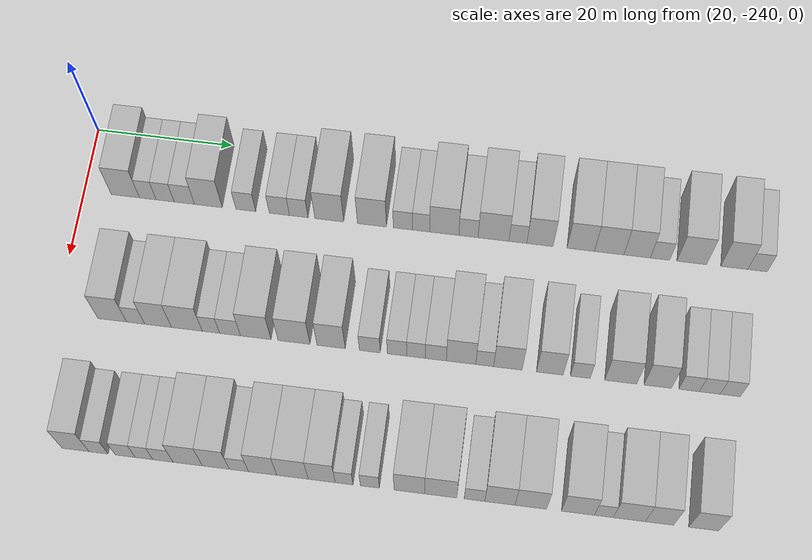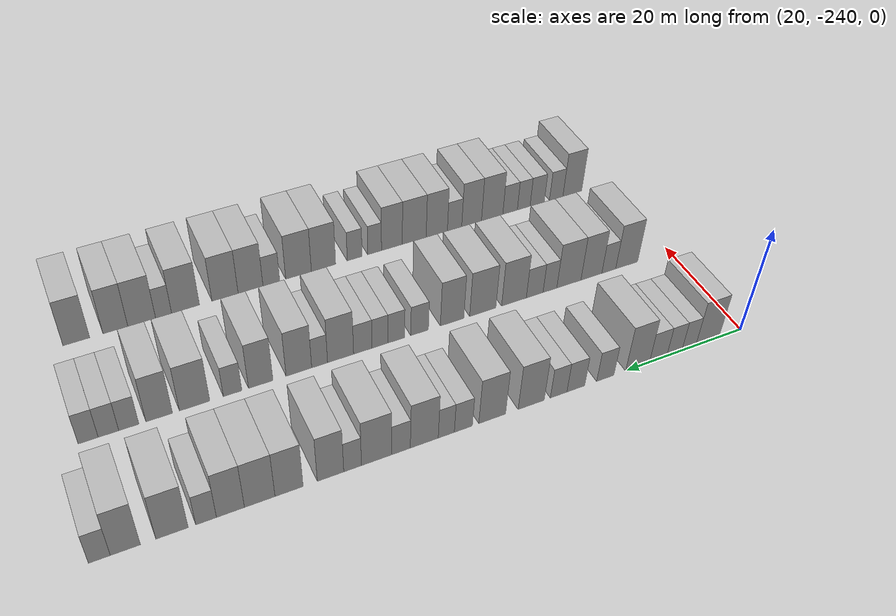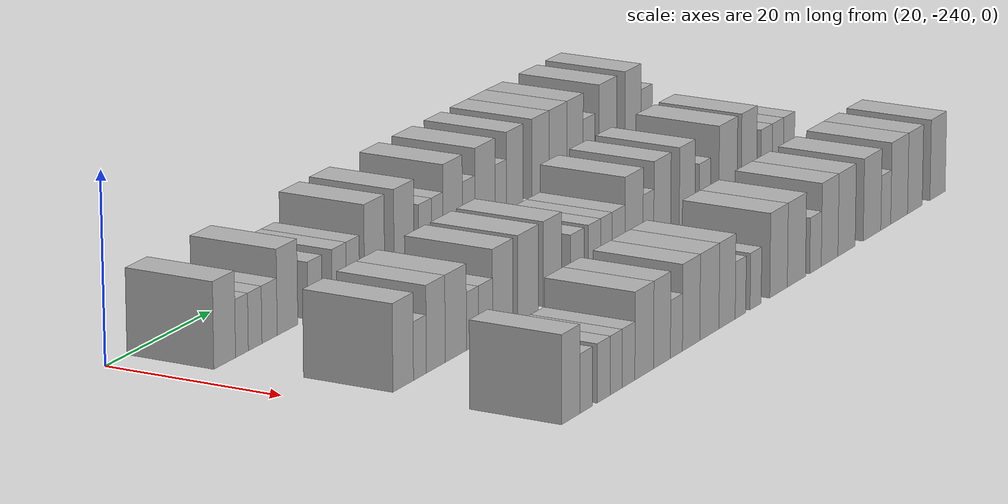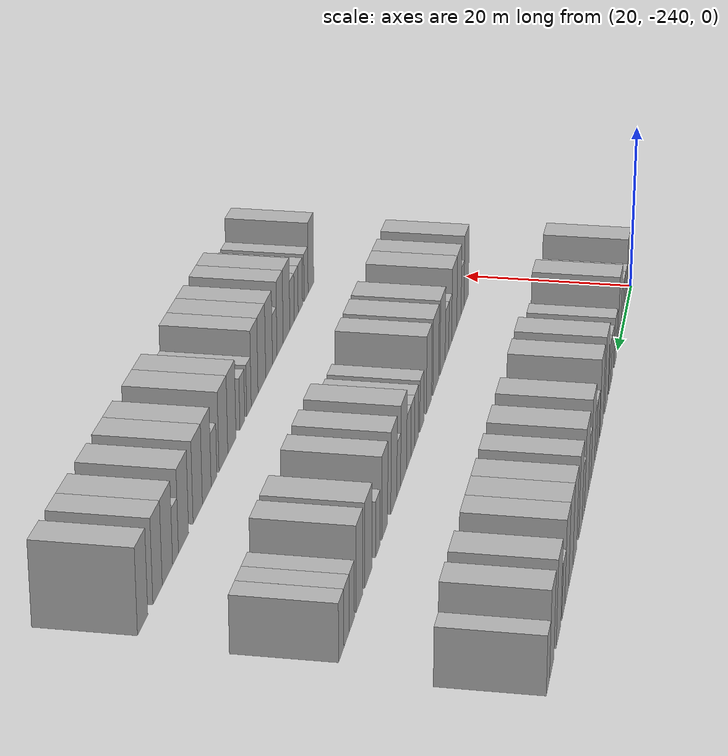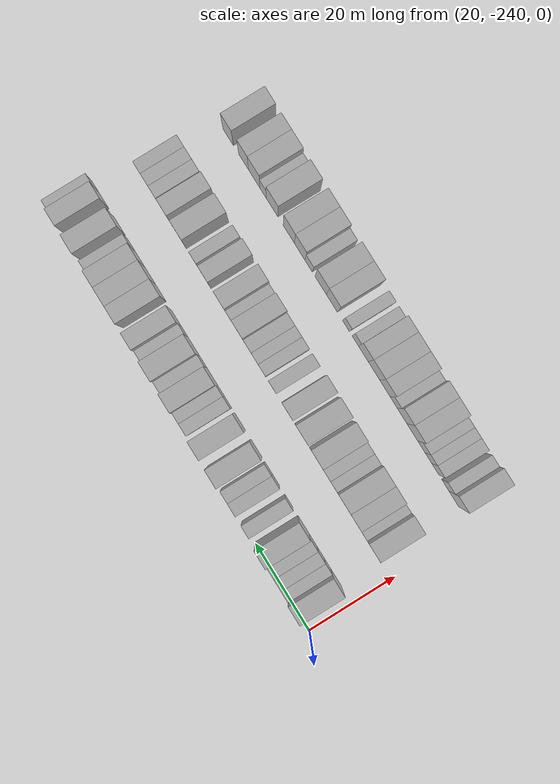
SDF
<sdf version="1.6">
 <world name="default">
  <model name="building_1">
   <static>1</static>
   <pose>25.0000 -233.9267 0 0.000000 0.000000 0.000000</pose>
   <link name="link">
    <pose>0 0 4.50 0 0 0</pose>
    <collision name="collision"><geometry><box><size>10.0000 4.1465 9.0000</size></box></geometry></collision>
    <visual name="visual">
     <cast_shadows>0</cast_shadows>
     <geometry><box><size>10.0000 4.1465 9.0000</size></box></geometry>
     <material>
      <script>
       <uri>model://HANNAS_wall/materials/scripts</uri>
       <uri>model://HANNAS_wall/materials/textures</uri>
       <name>vrc/HANNAS_wall</name>
      </script>
     </material>
    </visual>
   </link>
  </model>
  <model name="building_2">
   <static>1</static>
   <pose>25.0000 -230.6240 0 0.000000 0.000000 0.000000</pose>
   <link name="link">
    <pose>0 0 3.00 0 0 0</pose>
    <collision name="collision"><geometry><box><size>10.0000 2.4588 6.0000</size></box></geometry></collision>
    <visual name="visual">
     <cast_shadows>0</cast_shadows>
     <geometry><box><size>10.0000 2.4588 6.0000</size></box></geometry>
     <material>
      <script>
       <uri>model://HANNAS_wall/materials/scripts</uri>
       <uri>model://HANNAS_wall/materials/textures</uri>
       <name>vrc/HANNAS_wall</name>
      </script>
     </material>
    </visual>
   </link>
  </model>
  <model name="building_3">
   <static>1</static>
   <pose>25.0000 -228.0705 0 0.000000 0.000000 0.000000</pose>
   <link name="link">
    <pose>0 0 3.00 0 0 0</pose>
    <collision name="collision"><geometry><box><size>10.0000 2.6482 6.0000</size></box></geometry></collision>
    <visual name="visual">
     <cast_shadows>0</cast_shadows>
     <geometry><box><size>10.0000 2.6482 6.0000</size></box></geometry>
     <material>
      <script>
       <uri>model://HANNAS_wall/materials/scripts</uri>
       <uri>model://HANNAS_wall/materials/textures</uri>
       <name>vrc/HANNAS_wall</name>
      </script>
     </material>
    </visual>
   </link>
  </model>
  <model name="building_4">
   <static>1</static>
   <pose>25.0000 -225.2496 0 0.000000 0.000000 0.000000</pose>
   <link name="link">
    <pose>0 0 3.00 0 0 0</pose>
    <collision name="collision"><geometry><box><size>10.0000 2.9935 6.0000</size></box></geometry></collision>
    <visual name="visual">
     <cast_shadows>0</cast_shadows>
     <geometry><box><size>10.0000 2.9935 6.0000</size></box></geometry>
     <material>
      <script>
       <uri>model://HANNAS_wall/materials/scripts</uri>
       <uri>model://HANNAS_wall/materials/textures</uri>
       <name>vrc/HANNAS_wall</name>
      </script>
     </material>
    </visual>
   </link>
  </model>
  <model name="building_5">
   <static>1</static>
   <pose>25.0000 -221.7155 0 0.000000 0.000000 0.000000</pose>
   <link name="link">
    <pose>0 0 4.50 0 0 0</pose>
    <collision name="collision"><geometry><box><size>10.0000 4.0747 9.0000</size></box></geometry></collision>
    <visual name="visual">
     <cast_shadows>0</cast_shadows>
     <geometry><box><size>10.0000 4.0747 9.0000</size></box></geometry>
     <material>
      <script>
       <uri>model://HANNAS_wall/materials/scripts</uri>
       <uri>model://HANNAS_wall/materials/textures</uri>
       <name>vrc/HANNAS_wall</name>
      </script>
     </material>
    </visual>
   </link>
  </model>
  <model name="building_6">
   <static>1</static>
   <pose>25.0000 -216.2346 0 0.000000 0.000000 0.000000</pose>
   <link name="link">
    <pose>0 0 3.00 0 0 0</pose>
    <collision name="collision"><geometry><box><size>10.0000 2.8871 6.0000</size></box></geometry></collision>
    <visual name="visual">
     <cast_shadows>0</cast_shadows>
     <geometry><box><size>10.0000 2.8871 6.0000</size></box></geometry>
     <material>
      <script>
       <uri>model://HANNAS_wall/materials/scripts</uri>
       <uri>model://HANNAS_wall/materials/textures</uri>
       <name>vrc/HANNAS_wall</name>
      </script>
     </material>
    </visual>
   </link>
  </model>
  <model name="building_7">
   <static>1</static>
   <pose>25.0000 -211.3255 0 0.000000 0.000000 0.000000</pose>
   <link name="link">
    <pose>0 0 3.00 0 0 0</pose>
    <collision name="collision"><geometry><box><size>10.0000 2.9312 6.0000</size></box></geometry></collision>
    <visual name="visual">
     <cast_shadows>0</cast_shadows>
     <geometry><box><size>10.0000 2.9312 6.0000</size></box></geometry>
     <material>
      <script>
       <uri>model://HANNAS_wall/materials/scripts</uri>
       <uri>model://HANNAS_wall/materials/textures</uri>
       <name>vrc/HANNAS_wall</name>
      </script>
     </material>
    </visual>
   </link>
  </model>
  <model name="building_8">
   <static>1</static>
   <pose>25.0000 -208.5059 0 0.000000 0.000000 0.000000</pose>
   <link name="link">
    <pose>0 0 3.00 0 0 0</pose>
    <collision name="collision"><geometry><box><size>10.0000 2.7079 6.0000</size></box></geometry></collision>
    <visual name="visual">
     <cast_shadows>0</cast_shadows>
     <geometry><box><size>10.0000 2.7079 6.0000</size></box></geometry>
     <material>
      <script>
       <uri>model://HANNAS_wall/materials/scripts</uri>
       <uri>model://HANNAS_wall/materials/textures</uri>
       <name>vrc/HANNAS_wall</name>
      </script>
     </material>
    </visual>
   </link>
  </model>
  <model name="building_9">
   <static>1</static>
   <pose>25.0000 -204.0566 0 0.000000 0.000000 0.000000</pose>
   <link name="link">
    <pose>0 0 4.50 0 0 0</pose>
    <collision name="collision"><geometry><box><size>10.0000 4.1907 9.0000</size></box></geometry></collision>
    <visual name="visual">
     <cast_shadows>0</cast_shadows>
     <geometry><box><size>10.0000 4.1907 9.0000</size></box></geometry>
     <material>
      <script>
       <uri>model://HANNAS_wall/materials/scripts</uri>
       <uri>model://HANNAS_wall/materials/textures</uri>
       <name>vrc/HANNAS_wall</name>
      </script>
     </material>
    </visual>
   </link>
  </model>
  <model name="building_10">
   <static>1</static>
   <pose>25.0000 -197.8575 0 0.000000 0.000000 0.000000</pose>
   <link name="link">
    <pose>0 0 4.50 0 0 0</pose>
    <collision name="collision"><geometry><box><size>10.0000 4.2074 9.0000</size></box></geometry></collision>
    <visual name="visual">
     <cast_shadows>0</cast_shadows>
     <geometry><box><size>10.0000 4.2074 9.0000</size></box></geometry>
     <material>
      <script>
       <uri>model://HANNAS_wall/materials/scripts</uri>
       <uri>model://HANNAS_wall/materials/textures</uri>
       <name>vrc/HANNAS_wall</name>
      </script>
     </material>
    </visual>
   </link>
  </model>
  <model name="building_11">
   <static>1</static>
   <pose>25.0000 -193.3624 0 0.000000 0.000000 0.000000</pose>
   <link name="link">
    <pose>0 0 3.00 0 0 0</pose>
    <collision name="collision"><geometry><box><size>10.0000 2.7829 6.0000</size></box></geometry></collision>
    <visual name="visual">
     <cast_shadows>0</cast_shadows>
     <geometry><box><size>10.0000 2.7829 6.0000</size></box></geometry>
     <material>
      <script>
       <uri>model://HANNAS_wall/materials/scripts</uri>
       <uri>model://HANNAS_wall/materials/textures</uri>
       <name>vrc/HANNAS_wall</name>
      </script>
     </material>
    </visual>
   </link>
  </model>
  <model name="building_12">
   <static>1</static>
   <pose>25.0000 -190.7407 0 0.000000 0.000000 0.000000</pose>
   <link name="link">
    <pose>0 0 3.00 0 0 0</pose>
    <collision name="collision"><geometry><box><size>10.0000 2.4604 6.0000</size></box></geometry></collision>
    <visual name="visual">
     <cast_shadows>0</cast_shadows>
     <geometry><box><size>10.0000 2.4604 6.0000</size></box></geometry>
     <material>
      <script>
       <uri>model://HANNAS_wall/materials/scripts</uri>
       <uri>model://HANNAS_wall/materials/textures</uri>
       <name>vrc/HANNAS_wall</name>
      </script>
     </material>
    </visual>
   </link>
  </model>
  <model name="building_13">
   <static>1</static>
   <pose>25.0000 -187.4026 0 0.000000 0.000000 0.000000</pose>
   <link name="link">
    <pose>0 0 4.50 0 0 0</pose>
    <collision name="collision"><geometry><box><size>10.0000 4.2159 9.0000</size></box></geometry></collision>
    <visual name="visual">
     <cast_shadows>0</cast_shadows>
     <geometry><box><size>10.0000 4.2159 9.0000</size></box></geometry>
     <material>
      <script>
       <uri>model://HANNAS_wall/materials/scripts</uri>
       <uri>model://HANNAS_wall/materials/textures</uri>
       <name>vrc/HANNAS_wall</name>
      </script>
     </material>
    </visual>
   </link>
  </model>
  <model name="building_14">
   <static>1</static>
   <pose>25.0000 -183.9094 0 0.000000 0.000000 0.000000</pose>
   <link name="link">
    <pose>0 0 3.00 0 0 0</pose>
    <collision name="collision"><geometry><box><size>10.0000 2.7704 6.0000</size></box></geometry></collision>
    <visual name="visual">
     <cast_shadows>0</cast_shadows>
     <geometry><box><size>10.0000 2.7704 6.0000</size></box></geometry>
     <material>
      <script>
       <uri>model://HANNAS_wall/materials/scripts</uri>
       <uri>model://HANNAS_wall/materials/textures</uri>
       <name>vrc/HANNAS_wall</name>
      </script>
     </material>
    </visual>
   </link>
  </model>
  <model name="building_15">
   <static>1</static>
   <pose>25.0000 -180.2995 0 0.000000 0.000000 0.000000</pose>
   <link name="link">
    <pose>0 0 4.50 0 0 0</pose>
    <collision name="collision"><geometry><box><size>10.0000 4.4495 9.0000</size></box></geometry></collision>
    <visual name="visual">
     <cast_shadows>0</cast_shadows>
     <geometry><box><size>10.0000 4.4495 9.0000</size></box></geometry>
     <material>
      <script>
       <uri>model://HANNAS_wall/materials/scripts</uri>
       <uri>model://HANNAS_wall/materials/textures</uri>
       <name>vrc/HANNAS_wall</name>
      </script>
     </material>
    </visual>
   </link>
  </model>
  <model name="building_16">
   <static>1</static>
   <pose>25.0000 -176.7931 0 0.000000 0.000000 0.000000</pose>
   <link name="link">
    <pose>0 0 3.00 0 0 0</pose>
    <collision name="collision"><geometry><box><size>10.0000 2.5632 6.0000</size></box></geometry></collision>
    <visual name="visual">
     <cast_shadows>0</cast_shadows>
     <geometry><box><size>10.0000 2.5632 6.0000</size></box></geometry>
     <material>
      <script>
       <uri>model://HANNAS_wall/materials/scripts</uri>
       <uri>model://HANNAS_wall/materials/textures</uri>
       <name>vrc/HANNAS_wall</name>
      </script>
     </material>
    </visual>
   </link>
  </model>
  <model name="building_17">
   <static>1</static>
   <pose>25.0000 -173.6158 0 0.000000 0.000000 0.000000</pose>
   <link name="link">
    <pose>0 0 4.50 0 0 0</pose>
    <collision name="collision"><geometry><box><size>10.0000 3.7915 9.0000</size></box></geometry></collision>
    <visual name="visual">
     <cast_shadows>0</cast_shadows>
     <geometry><box><size>10.0000 3.7915 9.0000</size></box></geometry>
     <material>
      <script>
       <uri>model://HANNAS_wall/materials/scripts</uri>
       <uri>model://HANNAS_wall/materials/textures</uri>
       <name>vrc/HANNAS_wall</name>
      </script>
     </material>
    </visual>
   </link>
  </model>
  <model name="building_18">
   <static>1</static>
   <pose>25.0000 -167.7553 0 0.000000 0.000000 0.000000</pose>
   <link name="link">
    <pose>0 0 4.50 0 0 0</pose>
    <collision name="collision"><geometry><box><size>10.0000 3.9295 9.0000</size></box></geometry></collision>
    <visual name="visual">
     <cast_shadows>0</cast_shadows>
     <geometry><box><size>10.0000 3.9295 9.0000</size></box></geometry>
     <material>
      <script>
       <uri>model://HANNAS_wall/materials/scripts</uri>
       <uri>model://HANNAS_wall/materials/textures</uri>
       <name>vrc/HANNAS_wall</name>
      </script>
     </material>
    </visual>
   </link>
  </model>
  <model name="building_19">
   <static>1</static>
   <pose>25.0000 -163.6830 0 0.000000 0.000000 0.000000</pose>
   <link name="link">
    <pose>0 0 4.50 0 0 0</pose>
    <collision name="collision"><geometry><box><size>10.0000 4.2150 9.0000</size></box></geometry></collision>
    <visual name="visual">
     <cast_shadows>0</cast_shadows>
     <geometry><box><size>10.0000 4.2150 9.0000</size></box></geometry>
     <material>
      <script>
       <uri>model://HANNAS_wall/materials/scripts</uri>
       <uri>model://HANNAS_wall/materials/textures</uri>
       <name>vrc/HANNAS_wall</name>
      </script>
     </material>
    </visual>
   </link>
  </model>
  <model name="building_20">
   <static>1</static>
   <pose>25.0000 -159.6829 0 0.000000 0.000000 0.000000</pose>
   <link name="link">
    <pose>0 0 4.50 0 0 0</pose>
    <collision name="collision"><geometry><box><size>10.0000 3.7851 9.0000</size></box></geometry></collision>
    <visual name="visual">
     <cast_shadows>0</cast_shadows>
     <geometry><box><size>10.0000 3.7851 9.0000</size></box></geometry>
     <material>
      <script>
       <uri>model://HANNAS_wall/materials/scripts</uri>
       <uri>model://HANNAS_wall/materials/textures</uri>
       <name>vrc/HANNAS_wall</name>
      </script>
     </material>
    </visual>
   </link>
  </model>
  <model name="building_21">
   <static>1</static>
   <pose>25.0000 -156.4042 0 0.000000 0.000000 0.000000</pose>
   <link name="link">
    <pose>0 0 3.00 0 0 0</pose>
    <collision name="collision"><geometry><box><size>10.0000 2.7723 6.0000</size></box></geometry></collision>
    <visual name="visual">
     <cast_shadows>0</cast_shadows>
     <geometry><box><size>10.0000 2.7723 6.0000</size></box></geometry>
     <material>
      <script>
       <uri>model://HANNAS_wall/materials/scripts</uri>
       <uri>model://HANNAS_wall/materials/textures</uri>
       <name>vrc/HANNAS_wall</name>
      </script>
     </material>
    </visual>
   </link>
  </model>
  <model name="building_22">
   <static>1</static>
   <pose>25.0000 -151.8948 0 0.000000 0.000000 0.000000</pose>
   <link name="link">
    <pose>0 0 4.50 0 0 0</pose>
    <collision name="collision"><geometry><box><size>10.0000 4.2465 9.0000</size></box></geometry></collision>
    <visual name="visual">
     <cast_shadows>0</cast_shadows>
     <geometry><box><size>10.0000 4.2465 9.0000</size></box></geometry>
     <material>
      <script>
       <uri>model://HANNAS_wall/materials/scripts</uri>
       <uri>model://HANNAS_wall/materials/textures</uri>
       <name>vrc/HANNAS_wall</name>
      </script>
     </material>
    </visual>
   </link>
  </model>
  <model name="building_23">
   <static>1</static>
   <pose>25.0000 -145.8462 0 0.000000 0.000000 0.000000</pose>
   <link name="link">
    <pose>0 0 4.50 0 0 0</pose>
    <collision name="collision"><geometry><box><size>10.0000 3.8509 9.0000</size></box></geometry></collision>
    <visual name="visual">
     <cast_shadows>0</cast_shadows>
     <geometry><box><size>10.0000 3.8509 9.0000</size></box></geometry>
     <material>
      <script>
       <uri>model://HANNAS_wall/materials/scripts</uri>
       <uri>model://HANNAS_wall/materials/textures</uri>
       <name>vrc/HANNAS_wall</name>
      </script>
     </material>
    </visual>
   </link>
  </model>
  <model name="building_24">
   <static>1</static>
   <pose>25.0000 -142.5342 0 0.000000 0.000000 0.000000</pose>
   <link name="link">
    <pose>0 0 3.00 0 0 0</pose>
    <collision name="collision"><geometry><box><size>10.0000 2.7730 6.0000</size></box></geometry></collision>
    <visual name="visual">
     <cast_shadows>0</cast_shadows>
     <geometry><box><size>10.0000 2.7730 6.0000</size></box></geometry>
     <material>
      <script>
       <uri>model://HANNAS_wall/materials/scripts</uri>
       <uri>model://HANNAS_wall/materials/textures</uri>
       <name>vrc/HANNAS_wall</name>
      </script>
     </material>
    </visual>
   </link>
  </model>
  <model name="building_112">
   <static>1</static>
   <pose>44.0000 -231.9560 0 0.000000 0.000000 0.000000</pose>
   <link name="link">
    <pose>0 0 4.50 0 0 0</pose>
    <collision name="collision"><geometry><box><size>10.0000 4.0880 9.0000</size></box></geometry></collision>
    <visual name="visual">
     <cast_shadows>0</cast_shadows>
     <geometry><box><size>10.0000 4.0880 9.0000</size></box></geometry>
     <material>
      <script>
       <uri>model://HANNAS_wall/materials/scripts</uri>
       <uri>model://HANNAS_wall/materials/textures</uri>
       <name>vrc/HANNAS_wall</name>
      </script>
     </material>
    </visual>
   </link>
  </model>
  <model name="building_113">
   <static>1</static>
   <pose>44.0000 -228.6248 0 0.000000 0.000000 0.000000</pose>
   <link name="link">
    <pose>0 0 3.00 0 0 0</pose>
    <collision name="collision"><geometry><box><size>10.0000 2.5744 6.0000</size></box></geometry></collision>
    <visual name="visual">
     <cast_shadows>0</cast_shadows>
     <geometry><box><size>10.0000 2.5744 6.0000</size></box></geometry>
     <material>
      <script>
       <uri>model://HANNAS_wall/materials/scripts</uri>
       <uri>model://HANNAS_wall/materials/textures</uri>
       <name>vrc/HANNAS_wall</name>
      </script>
     </material>
    </visual>
   </link>
  </model>
  <model name="building_114">
   <static>1</static>
   <pose>44.0000 -225.4258 0 0.000000 0.000000 0.000000</pose>
   <link name="link">
    <pose>0 0 4.50 0 0 0</pose>
    <collision name="collision"><geometry><box><size>10.0000 3.8237 9.0000</size></box></geometry></collision>
    <visual name="visual">
     <cast_shadows>0</cast_shadows>
     <geometry><box><size>10.0000 3.8237 9.0000</size></box></geometry>
     <material>
      <script>
       <uri>model://HANNAS_wall/materials/scripts</uri>
       <uri>model://HANNAS_wall/materials/textures</uri>
       <name>vrc/HANNAS_wall</name>
      </script>
     </material>
    </visual>
   </link>
  </model>
  <model name="building_115">
   <static>1</static>
   <pose>44.0000 -221.3288 0 0.000000 0.000000 0.000000</pose>
   <link name="link">
    <pose>0 0 4.50 0 0 0</pose>
    <collision name="collision"><geometry><box><size>10.0000 4.3702 9.0000</size></box></geometry></collision>
    <visual name="visual">
     <cast_shadows>0</cast_shadows>
     <geometry><box><size>10.0000 4.3702 9.0000</size></box></geometry>
     <material>
      <script>
       <uri>model://HANNAS_wall/materials/scripts</uri>
       <uri>model://HANNAS_wall/materials/textures</uri>
       <name>vrc/HANNAS_wall</name>
      </script>
     </material>
    </visual>
   </link>
  </model>
  <model name="building_116">
   <static>1</static>
   <pose>44.0000 -217.9159 0 0.000000 0.000000 0.000000</pose>
   <link name="link">
    <pose>0 0 3.00 0 0 0</pose>
    <collision name="collision"><geometry><box><size>10.0000 2.4558 6.0000</size></box></geometry></collision>
    <visual name="visual">
     <cast_shadows>0</cast_shadows>
     <geometry><box><size>10.0000 2.4558 6.0000</size></box></geometry>
     <material>
      <script>
       <uri>model://HANNAS_wall/materials/scripts</uri>
       <uri>model://HANNAS_wall/materials/textures</uri>
       <name>vrc/HANNAS_wall</name>
      </script>
     </material>
    </visual>
   </link>
  </model>
  <model name="building_117">
   <static>1</static>
   <pose>44.0000 -215.2074 0 0.000000 0.000000 0.000000</pose>
   <link name="link">
    <pose>0 0 3.00 0 0 0</pose>
    <collision name="collision"><geometry><box><size>10.0000 2.9612 6.0000</size></box></geometry></collision>
    <visual name="visual">
     <cast_shadows>0</cast_shadows>
     <geometry><box><size>10.0000 2.9612 6.0000</size></box></geometry>
     <material>
      <script>
       <uri>model://HANNAS_wall/materials/scripts</uri>
       <uri>model://HANNAS_wall/materials/textures</uri>
       <name>vrc/HANNAS_wall</name>
      </script>
     </material>
    </visual>
   </link>
  </model>
  <model name="building_118">
   <static>1</static>
   <pose>44.0000 -211.5660 0 0.000000 0.000000 0.000000</pose>
   <link name="link">
    <pose>0 0 4.50 0 0 0</pose>
    <collision name="collision"><geometry><box><size>10.0000 4.3215 9.0000</size></box></geometry></collision>
    <visual name="visual">
     <cast_shadows>0</cast_shadows>
     <geometry><box><size>10.0000 4.3215 9.0000</size></box></geometry>
     <material>
      <script>
       <uri>model://HANNAS_wall/materials/scripts</uri>
       <uri>model://HANNAS_wall/materials/textures</uri>
       <name>vrc/HANNAS_wall</name>
      </script>
     </material>
    </visual>
   </link>
  </model>
  <model name="building_119">
   <static>1</static>
   <pose>44.0000 -206.1586 0 0.000000 0.000000 0.000000</pose>
   <link name="link">
    <pose>0 0 4.50 0 0 0</pose>
    <collision name="collision"><geometry><box><size>10.0000 4.4933 9.0000</size></box></geometry></collision>
    <visual name="visual">
     <cast_shadows>0</cast_shadows>
     <geometry><box><size>10.0000 4.4933 9.0000</size></box></geometry>
     <material>
      <script>
       <uri>model://HANNAS_wall/materials/scripts</uri>
       <uri>model://HANNAS_wall/materials/textures</uri>
       <name>vrc/HANNAS_wall</name>
      </script>
     </material>
    </visual>
   </link>
  </model>
  <model name="building_120">
   <static>1</static>
   <pose>44.0000 -200.9353 0 0.000000 0.000000 0.000000</pose>
   <link name="link">
    <pose>0 0 4.50 0 0 0</pose>
    <collision name="collision"><geometry><box><size>10.0000 3.9533 9.0000</size></box></geometry></collision>
    <visual name="visual">
     <cast_shadows>0</cast_shadows>
     <geometry><box><size>10.0000 3.9533 9.0000</size></box></geometry>
     <material>
      <script>
       <uri>model://HANNAS_wall/materials/scripts</uri>
       <uri>model://HANNAS_wall/materials/textures</uri>
       <name>vrc/HANNAS_wall</name>
      </script>
     </material>
    </visual>
   </link>
  </model>
  <model name="building_121">
   <static>1</static>
   <pose>44.0000 -195.4944 0 0.000000 0.000000 0.000000</pose>
   <link name="link">
    <pose>0 0 3.00 0 0 0</pose>
    <collision name="collision"><geometry><box><size>10.0000 2.9284 6.0000</size></box></geometry></collision>
    <visual name="visual">
     <cast_shadows>0</cast_shadows>
     <geometry><box><size>10.0000 2.9284 6.0000</size></box></geometry>
     <material>
      <script>
       <uri>model://HANNAS_wall/materials/scripts</uri>
       <uri>model://HANNAS_wall/materials/textures</uri>
       <name>vrc/HANNAS_wall</name>
      </script>
     </material>
    </visual>
   </link>
  </model>
  <model name="building_122">
   <static>1</static>
   <pose>44.0000 -191.6712 0 0.000000 0.000000 0.000000</pose>
   <link name="link">
    <pose>0 0 3.00 0 0 0</pose>
    <collision name="collision"><geometry><box><size>10.0000 2.7181 6.0000</size></box></geometry></collision>
    <visual name="visual">
     <cast_shadows>0</cast_shadows>
     <geometry><box><size>10.0000 2.7181 6.0000</size></box></geometry>
     <material>
      <script>
       <uri>model://HANNAS_wall/materials/scripts</uri>
       <uri>model://HANNAS_wall/materials/textures</uri>
       <name>vrc/HANNAS_wall</name>
      </script>
     </material>
    </visual>
   </link>
  </model>
  <model name="building_123">
   <static>1</static>
   <pose>44.0000 -189.0272 0 0.000000 0.000000 0.000000</pose>
   <link name="link">
    <pose>0 0 3.00 0 0 0</pose>
    <collision name="collision"><geometry><box><size>10.0000 2.5698 6.0000</size></box></geometry></collision>
    <visual name="visual">
     <cast_shadows>0</cast_shadows>
     <geometry><box><size>10.0000 2.5698 6.0000</size></box></geometry>
     <material>
      <script>
       <uri>model://HANNAS_wall/materials/scripts</uri>
       <uri>model://HANNAS_wall/materials/textures</uri>
       <name>vrc/HANNAS_wall</name>
      </script>
     </material>
    </visual>
   </link>
  </model>
  <model name="building_124">
   <static>1</static>
   <pose>44.0000 -186.2627 0 0.000000 0.000000 0.000000</pose>
   <link name="link">
    <pose>0 0 3.00 0 0 0</pose>
    <collision name="collision"><geometry><box><size>10.0000 2.9591 6.0000</size></box></geometry></collision>
    <visual name="visual">
     <cast_shadows>0</cast_shadows>
     <geometry><box><size>10.0000 2.9591 6.0000</size></box></geometry>
     <material>
      <script>
       <uri>model://HANNAS_wall/materials/scripts</uri>
       <uri>model://HANNAS_wall/materials/textures</uri>
       <name>vrc/HANNAS_wall</name>
      </script>
     </material>
    </visual>
   </link>
  </model>
  <model name="building_125">
   <static>1</static>
   <pose>44.0000 -182.7230 0 0.000000 0.000000 0.000000</pose>
   <link name="link">
    <pose>0 0 4.50 0 0 0</pose>
    <collision name="collision"><geometry><box><size>10.0000 4.1204 9.0000</size></box></geometry></collision>
    <visual name="visual">
     <cast_shadows>0</cast_shadows>
     <geometry><box><size>10.0000 4.1204 9.0000</size></box></geometry>
     <material>
      <script>
       <uri>model://HANNAS_wall/materials/scripts</uri>
       <uri>model://HANNAS_wall/materials/textures</uri>
       <name>vrc/HANNAS_wall</name>
      </script>
     </material>
    </visual>
   </link>
  </model>
  <model name="building_126">
   <static>1</static>
   <pose>44.0000 -179.4236 0 0.000000 0.000000 0.000000</pose>
   <link name="link">
    <pose>0 0 3.00 0 0 0</pose>
    <collision name="collision"><geometry><box><size>10.0000 2.4785 6.0000</size></box></geometry></collision>
    <visual name="visual">
     <cast_shadows>0</cast_shadows>
     <geometry><box><size>10.0000 2.4785 6.0000</size></box></geometry>
     <material>
      <script>
       <uri>model://HANNAS_wall/materials/scripts</uri>
       <uri>model://HANNAS_wall/materials/textures</uri>
       <name>vrc/HANNAS_wall</name>
      </script>
     </material>
    </visual>
   </link>
  </model>
  <model name="building_127">
   <static>1</static>
   <pose>44.0000 -176.2017 0 0.000000 0.000000 0.000000</pose>
   <link name="link">
    <pose>0 0 4.50 0 0 0</pose>
    <collision name="collision"><geometry><box><size>10.0000 3.9652 9.0000</size></box></geometry></collision>
    <visual name="visual">
     <cast_shadows>0</cast_shadows>
     <geometry><box><size>10.0000 3.9652 9.0000</size></box></geometry>
     <material>
      <script>
       <uri>model://HANNAS_wall/materials/scripts</uri>
       <uri>model://HANNAS_wall/materials/textures</uri>
       <name>vrc/HANNAS_wall</name>
      </script>
     </material>
    </visual>
   </link>
  </model>
  <model name="building_128">
   <static>1</static>
   <pose>44.0000 -170.3651 0 0.000000 0.000000 0.000000</pose>
   <link name="link">
    <pose>0 0 4.50 0 0 0</pose>
    <collision name="collision"><geometry><box><size>10.0000 3.7082 9.0000</size></box></geometry></collision>
    <visual name="visual">
     <cast_shadows>0</cast_shadows>
     <geometry><box><size>10.0000 3.7082 9.0000</size></box></geometry>
     <material>
      <script>
       <uri>model://HANNAS_wall/materials/scripts</uri>
       <uri>model://HANNAS_wall/materials/textures</uri>
       <name>vrc/HANNAS_wall</name>
      </script>
     </material>
    </visual>
   </link>
  </model>
  <model name="building_129">
   <static>1</static>
   <pose>44.0000 -166.1350 0 0.000000 0.000000 0.000000</pose>
   <link name="link">
    <pose>0 0 3.00 0 0 0</pose>
    <collision name="collision"><geometry><box><size>10.0000 2.7519 6.0000</size></box></geometry></collision>
    <visual name="visual">
     <cast_shadows>0</cast_shadows>
     <geometry><box><size>10.0000 2.7519 6.0000</size></box></geometry>
     <material>
      <script>
       <uri>model://HANNAS_wall/materials/scripts</uri>
       <uri>model://HANNAS_wall/materials/textures</uri>
       <name>vrc/HANNAS_wall</name>
      </script>
     </material>
    </visual>
   </link>
  </model>
  <model name="building_130">
   <static>1</static>
   <pose>44.0000 -160.5387 0 0.000000 0.000000 0.000000</pose>
   <link name="link">
    <pose>0 0 4.50 0 0 0</pose>
    <collision name="collision"><geometry><box><size>10.0000 4.4408 9.0000</size></box></geometry></collision>
    <visual name="visual">
     <cast_shadows>0</cast_shadows>
     <geometry><box><size>10.0000 4.4408 9.0000</size></box></geometry>
     <material>
      <script>
       <uri>model://HANNAS_wall/materials/scripts</uri>
       <uri>model://HANNAS_wall/materials/textures</uri>
       <name>vrc/HANNAS_wall</name>
      </script>
     </material>
    </visual>
   </link>
  </model>
  <model name="building_131">
   <static>1</static>
   <pose>44.0000 -155.4134 0 0.000000 0.000000 0.000000</pose>
   <link name="link">
    <pose>0 0 4.50 0 0 0</pose>
    <collision name="collision"><geometry><box><size>10.0000 3.8098 9.0000</size></box></geometry></collision>
    <visual name="visual">
     <cast_shadows>0</cast_shadows>
     <geometry><box><size>10.0000 3.8098 9.0000</size></box></geometry>
     <material>
      <script>
       <uri>model://HANNAS_wall/materials/scripts</uri>
       <uri>model://HANNAS_wall/materials/textures</uri>
       <name>vrc/HANNAS_wall</name>
      </script>
     </material>
    </visual>
   </link>
  </model>
  <model name="building_132">
   <static>1</static>
   <pose>44.0000 -151.0906 0 0.000000 0.000000 0.000000</pose>
   <link name="link">
    <pose>0 0 3.00 0 0 0</pose>
    <collision name="collision"><geometry><box><size>10.0000 2.8357 6.0000</size></box></geometry></collision>
    <visual name="visual">
     <cast_shadows>0</cast_shadows>
     <geometry><box><size>10.0000 2.8357 6.0000</size></box></geometry>
     <material>
      <script>
       <uri>model://HANNAS_wall/materials/scripts</uri>
       <uri>model://HANNAS_wall/materials/textures</uri>
       <name>vrc/HANNAS_wall</name>
      </script>
     </material>
    </visual>
   </link>
  </model>
  <model name="building_133">
   <static>1</static>
   <pose>44.0000 -148.2405 0 0.000000 0.000000 0.000000</pose>
   <link name="link">
    <pose>0 0 3.00 0 0 0</pose>
    <collision name="collision"><geometry><box><size>10.0000 2.8646 6.0000</size></box></geometry></collision>
    <visual name="visual">
     <cast_shadows>0</cast_shadows>
     <geometry><box><size>10.0000 2.8646 6.0000</size></box></geometry>
     <material>
      <script>
       <uri>model://HANNAS_wall/materials/scripts</uri>
       <uri>model://HANNAS_wall/materials/textures</uri>
       <name>vrc/HANNAS_wall</name>
      </script>
     </material>
    </visual>
   </link>
  </model>
  <model name="building_134">
   <static>1</static>
   <pose>44.0000 -145.4160 0 0.000000 0.000000 0.000000</pose>
   <link name="link">
    <pose>0 0 3.00 0 0 0</pose>
    <collision name="collision"><geometry><box><size>10.0000 2.7842 6.0000</size></box></geometry></collision>
    <visual name="visual">
     <cast_shadows>0</cast_shadows>
     <geometry><box><size>10.0000 2.7842 6.0000</size></box></geometry>
     <material>
      <script>
       <uri>model://HANNAS_wall/materials/scripts</uri>
       <uri>model://HANNAS_wall/materials/textures</uri>
       <name>vrc/HANNAS_wall</name>
      </script>
     </material>
    </visual>
   </link>
  </model>
  <model name="building_236">
   <static>1</static>
   <pose>63.0000 -233.1443 0 0.000000 0.000000 0.000000</pose>
   <link name="link">
    <pose>0 0 4.50 0 0 0</pose>
    <collision name="collision"><geometry><box><size>10.0000 3.7114 9.0000</size></box></geometry></collision>
    <visual name="visual">
     <cast_shadows>0</cast_shadows>
     <geometry><box><size>10.0000 3.7114 9.0000</size></box></geometry>
     <material>
      <script>
       <uri>model://HANNAS_wall/materials/scripts</uri>
       <uri>model://HANNAS_wall/materials/textures</uri>
       <name>vrc/HANNAS_wall</name>
      </script>
     </material>
    </visual>
   </link>
  </model>
  <model name="building_237">
   <static>1</static>
   <pose>63.0000 -229.9709 0 0.000000 0.000000 0.000000</pose>
   <link name="link">
    <pose>0 0 3.00 0 0 0</pose>
    <collision name="collision"><geometry><box><size>10.0000 2.6354 6.0000</size></box></geometry></collision>
    <visual name="visual">
     <cast_shadows>0</cast_shadows>
     <geometry><box><size>10.0000 2.6354 6.0000</size></box></geometry>
     <material>
      <script>
       <uri>model://HANNAS_wall/materials/scripts</uri>
       <uri>model://HANNAS_wall/materials/textures</uri>
       <name>vrc/HANNAS_wall</name>
      </script>
     </material>
    </visual>
   </link>
  </model>
  <model name="building_238">
   <static>1</static>
   <pose>63.0000 -226.2786 0 0.000000 0.000000 0.000000</pose>
   <link name="link">
    <pose>0 0 3.00 0 0 0</pose>
    <collision name="collision"><geometry><box><size>10.0000 2.7491 6.0000</size></box></geometry></collision>
    <visual name="visual">
     <cast_shadows>0</cast_shadows>
     <geometry><box><size>10.0000 2.7491 6.0000</size></box></geometry>
     <material>
      <script>
       <uri>model://HANNAS_wall/materials/scripts</uri>
       <uri>model://HANNAS_wall/materials/textures</uri>
       <name>vrc/HANNAS_wall</name>
      </script>
     </material>
    </visual>
   </link>
  </model>
  <model name="building_239">
   <static>1</static>
   <pose>63.0000 -223.6861 0 0.000000 0.000000 0.000000</pose>
   <link name="link">
    <pose>0 0 3.00 0 0 0</pose>
    <collision name="collision"><geometry><box><size>10.0000 2.4359 6.0000</size></box></geometry></collision>
    <visual name="visual">
     <cast_shadows>0</cast_shadows>
     <geometry><box><size>10.0000 2.4359 6.0000</size></box></geometry>
     <material>
      <script>
       <uri>model://HANNAS_wall/materials/scripts</uri>
       <uri>model://HANNAS_wall/materials/textures</uri>
       <name>vrc/HANNAS_wall</name>
      </script>
     </material>
    </visual>
   </link>
  </model>
  <model name="building_240">
   <static>1</static>
   <pose>63.0000 -221.0870 0 0.000000 0.000000 0.000000</pose>
   <link name="link">
    <pose>0 0 3.00 0 0 0</pose>
    <collision name="collision"><geometry><box><size>10.0000 2.7623 6.0000</size></box></geometry></collision>
    <visual name="visual">
     <cast_shadows>0</cast_shadows>
     <geometry><box><size>10.0000 2.7623 6.0000</size></box></geometry>
     <material>
      <script>
       <uri>model://HANNAS_wall/materials/scripts</uri>
       <uri>model://HANNAS_wall/materials/textures</uri>
       <name>vrc/HANNAS_wall</name>
      </script>
     </material>
    </visual>
   </link>
  </model>
  <model name="building_241">
   <static>1</static>
   <pose>63.0000 -217.6955 0 0.000000 0.000000 0.000000</pose>
   <link name="link">
    <pose>0 0 4.50 0 0 0</pose>
    <collision name="collision"><geometry><box><size>10.0000 4.0207 9.0000</size></box></geometry></collision>
    <visual name="visual">
     <cast_shadows>0</cast_shadows>
     <geometry><box><size>10.0000 4.0207 9.0000</size></box></geometry>
     <material>
      <script>
       <uri>model://HANNAS_wall/materials/scripts</uri>
       <uri>model://HANNAS_wall/materials/textures</uri>
       <name>vrc/HANNAS_wall</name>
      </script>
     </material>
    </visual>
   </link>
  </model>
  <model name="building_242">
   <static>1</static>
   <pose>63.0000 -213.8468 0 0.000000 0.000000 0.000000</pose>
   <link name="link">
    <pose>0 0 4.50 0 0 0</pose>
    <collision name="collision"><geometry><box><size>10.0000 3.6767 9.0000</size></box></geometry></collision>
    <visual name="visual">
     <cast_shadows>0</cast_shadows>
     <geometry><box><size>10.0000 3.6767 9.0000</size></box></geometry>
     <material>
      <script>
       <uri>model://HANNAS_wall/materials/scripts</uri>
       <uri>model://HANNAS_wall/materials/textures</uri>
       <name>vrc/HANNAS_wall</name>
      </script>
     </material>
    </visual>
   </link>
  </model>
  <model name="building_243">
   <static>1</static>
   <pose>63.0000 -210.6886 0 0.000000 0.000000 0.000000</pose>
   <link name="link">
    <pose>0 0 3.00 0 0 0</pose>
    <collision name="collision"><geometry><box><size>10.0000 2.6398 6.0000</size></box></geometry></collision>
    <visual name="visual">
     <cast_shadows>0</cast_shadows>
     <geometry><box><size>10.0000 2.6398 6.0000</size></box></geometry>
     <material>
      <script>
       <uri>model://HANNAS_wall/materials/scripts</uri>
       <uri>model://HANNAS_wall/materials/textures</uri>
       <name>vrc/HANNAS_wall</name>
      </script>
     </material>
    </visual>
   </link>
  </model>
  <model name="building_244">
   <static>1</static>
   <pose>63.0000 -207.4342 0 0.000000 0.000000 0.000000</pose>
   <link name="link">
    <pose>0 0 4.50 0 0 0</pose>
    <collision name="collision"><geometry><box><size>10.0000 3.8689 9.0000</size></box></geometry></collision>
    <visual name="visual">
     <cast_shadows>0</cast_shadows>
     <geometry><box><size>10.0000 3.8689 9.0000</size></box></geometry>
     <material>
      <script>
       <uri>model://HANNAS_wall/materials/scripts</uri>
       <uri>model://HANNAS_wall/materials/textures</uri>
       <name>vrc/HANNAS_wall</name>
      </script>
     </material>
    </visual>
   </link>
  </model>
  <model name="building_245">
   <static>1</static>
   <pose>63.0000 -203.3500 0 0.000000 0.000000 0.000000</pose>
   <link name="link">
    <pose>0 0 4.50 0 0 0</pose>
    <collision name="collision"><geometry><box><size>10.0000 4.2997 9.0000</size></box></geometry></collision>
    <visual name="visual">
     <cast_shadows>0</cast_shadows>
     <geometry><box><size>10.0000 4.2997 9.0000</size></box></geometry>
     <material>
      <script>
       <uri>model://HANNAS_wall/materials/scripts</uri>
       <uri>model://HANNAS_wall/materials/textures</uri>
       <name>vrc/HANNAS_wall</name>
      </script>
     </material>
    </visual>
   </link>
  </model>
  <model name="building_246">
   <static>1</static>
   <pose>63.0000 -199.3574 0 0.000000 0.000000 0.000000</pose>
   <link name="link">
    <pose>0 0 4.50 0 0 0</pose>
    <collision name="collision"><geometry><box><size>10.0000 3.6854 9.0000</size></box></geometry></collision>
    <visual name="visual">
     <cast_shadows>0</cast_shadows>
     <geometry><box><size>10.0000 3.6854 9.0000</size></box></geometry>
     <material>
      <script>
       <uri>model://HANNAS_wall/materials/scripts</uri>
       <uri>model://HANNAS_wall/materials/textures</uri>
       <name>vrc/HANNAS_wall</name>
      </script>
     </material>
    </visual>
   </link>
  </model>
  <model name="building_247">
   <static>1</static>
   <pose>63.0000 -196.3082 0 0.000000 0.000000 0.000000</pose>
   <link name="link">
    <pose>0 0 3.00 0 0 0</pose>
    <collision name="collision"><geometry><box><size>10.0000 2.4132 6.0000</size></box></geometry></collision>
    <visual name="visual">
     <cast_shadows>0</cast_shadows>
     <geometry><box><size>10.0000 2.4132 6.0000</size></box></geometry>
     <material>
      <script>
       <uri>model://HANNAS_wall/materials/scripts</uri>
       <uri>model://HANNAS_wall/materials/textures</uri>
       <name>vrc/HANNAS_wall</name>
      </script>
     </material>
    </visual>
   </link>
  </model>
  <model name="building_248">
   <static>1</static>
   <pose>63.0000 -192.8141 0 0.000000 0.000000 0.000000</pose>
   <link name="link">
    <pose>0 0 3.00 0 0 0</pose>
    <collision name="collision"><geometry><box><size>10.0000 2.5750 6.0000</size></box></geometry></collision>
    <visual name="visual">
     <cast_shadows>0</cast_shadows>
     <geometry><box><size>10.0000 2.5750 6.0000</size></box></geometry>
     <material>
      <script>
       <uri>model://HANNAS_wall/materials/scripts</uri>
       <uri>model://HANNAS_wall/materials/textures</uri>
       <name>vrc/HANNAS_wall</name>
      </script>
     </material>
    </visual>
   </link>
  </model>
  <model name="building_249">
   <static>1</static>
   <pose>63.0000 -187.4541 0 0.000000 0.000000 0.000000</pose>
   <link name="link">
    <pose>0 0 4.50 0 0 0</pose>
    <collision name="collision"><geometry><box><size>10.0000 4.1450 9.0000</size></box></geometry></collision>
    <visual name="visual">
     <cast_shadows>0</cast_shadows>
     <geometry><box><size>10.0000 4.1450 9.0000</size></box></geometry>
     <material>
      <script>
       <uri>model://HANNAS_wall/materials/scripts</uri>
       <uri>model://HANNAS_wall/materials/textures</uri>
       <name>vrc/HANNAS_wall</name>
      </script>
     </material>
    </visual>
   </link>
  </model>
  <model name="building_250">
   <static>1</static>
   <pose>63.0000 -183.2174 0 0.000000 0.000000 0.000000</pose>
   <link name="link">
    <pose>0 0 4.50 0 0 0</pose>
    <collision name="collision"><geometry><box><size>10.0000 4.3283 9.0000</size></box></geometry></collision>
    <visual name="visual">
     <cast_shadows>0</cast_shadows>
     <geometry><box><size>10.0000 4.3283 9.0000</size></box></geometry>
     <material>
      <script>
       <uri>model://HANNAS_wall/materials/scripts</uri>
       <uri>model://HANNAS_wall/materials/textures</uri>
       <name>vrc/HANNAS_wall</name>
      </script>
     </material>
    </visual>
   </link>
  </model>
  <model name="building_251">
   <static>1</static>
   <pose>63.0000 -178.6654 0 0.000000 0.000000 0.000000</pose>
   <link name="link">
    <pose>0 0 3.00 0 0 0</pose>
    <collision name="collision"><geometry><box><size>10.0000 2.7759 6.0000</size></box></geometry></collision>
    <visual name="visual">
     <cast_shadows>0</cast_shadows>
     <geometry><box><size>10.0000 2.7759 6.0000</size></box></geometry>
     <material>
      <script>
       <uri>model://HANNAS_wall/materials/scripts</uri>
       <uri>model://HANNAS_wall/materials/textures</uri>
       <name>vrc/HANNAS_wall</name>
      </script>
     </material>
    </visual>
   </link>
  </model>
  <model name="building_252">
   <static>1</static>
   <pose>63.0000 -175.2400 0 0.000000 0.000000 0.000000</pose>
   <link name="link">
    <pose>0 0 4.50 0 0 0</pose>
    <collision name="collision"><geometry><box><size>10.0000 4.0749 9.0000</size></box></geometry></collision>
    <visual name="visual">
     <cast_shadows>0</cast_shadows>
     <geometry><box><size>10.0000 4.0749 9.0000</size></box></geometry>
     <material>
      <script>
       <uri>model://HANNAS_wall/materials/scripts</uri>
       <uri>model://HANNAS_wall/materials/textures</uri>
       <name>vrc/HANNAS_wall</name>
      </script>
     </material>
    </visual>
   </link>
  </model>
  <model name="building_253">
   <static>1</static>
   <pose>63.0000 -171.0844 0 0.000000 0.000000 0.000000</pose>
   <link name="link">
    <pose>0 0 4.50 0 0 0</pose>
    <collision name="collision"><geometry><box><size>10.0000 4.2363 9.0000</size></box></geometry></collision>
    <visual name="visual">
     <cast_shadows>0</cast_shadows>
     <geometry><box><size>10.0000 4.2363 9.0000</size></box></geometry>
     <material>
      <script>
       <uri>model://HANNAS_wall/materials/scripts</uri>
       <uri>model://HANNAS_wall/materials/textures</uri>
       <name>vrc/HANNAS_wall</name>
      </script>
     </material>
    </visual>
   </link>
  </model>
  <model name="building_254">
   <static>1</static>
   <pose>63.0000 -164.7592 0 0.000000 0.000000 0.000000</pose>
   <link name="link">
    <pose>0 0 4.50 0 0 0</pose>
    <collision name="collision"><geometry><box><size>10.0000 4.4139 9.0000</size></box></geometry></collision>
    <visual name="visual">
     <cast_shadows>0</cast_shadows>
     <geometry><box><size>10.0000 4.4139 9.0000</size></box></geometry>
     <material>
      <script>
       <uri>model://HANNAS_wall/materials/scripts</uri>
       <uri>model://HANNAS_wall/materials/textures</uri>
       <name>vrc/HANNAS_wall</name>
      </script>
     </material>
    </visual>
   </link>
  </model>
  <model name="building_255">
   <static>1</static>
   <pose>63.0000 -161.2959 0 0.000000 0.000000 0.000000</pose>
   <link name="link">
    <pose>0 0 3.00 0 0 0</pose>
    <collision name="collision"><geometry><box><size>10.0000 2.5128 6.0000</size></box></geometry></collision>
    <visual name="visual">
     <cast_shadows>0</cast_shadows>
     <geometry><box><size>10.0000 2.5128 6.0000</size></box></geometry>
     <material>
      <script>
       <uri>model://HANNAS_wall/materials/scripts</uri>
       <uri>model://HANNAS_wall/materials/textures</uri>
       <name>vrc/HANNAS_wall</name>
      </script>
     </material>
    </visual>
   </link>
  </model>
  <model name="building_256">
   <static>1</static>
   <pose>63.0000 -157.8895 0 0.000000 0.000000 0.000000</pose>
   <link name="link">
    <pose>0 0 4.50 0 0 0</pose>
    <collision name="collision"><geometry><box><size>10.0000 4.3000 9.0000</size></box></geometry></collision>
    <visual name="visual">
     <cast_shadows>0</cast_shadows>
     <geometry><box><size>10.0000 4.3000 9.0000</size></box></geometry>
     <material>
      <script>
       <uri>model://HANNAS_wall/materials/scripts</uri>
       <uri>model://HANNAS_wall/materials/textures</uri>
       <name>vrc/HANNAS_wall</name>
      </script>
     </material>
    </visual>
   </link>
  </model>
  <model name="building_257">
   <static>1</static>
   <pose>63.0000 -153.8488 0 0.000000 0.000000 0.000000</pose>
   <link name="link">
    <pose>0 0 4.50 0 0 0</pose>
    <collision name="collision"><geometry><box><size>10.0000 3.7814 9.0000</size></box></geometry></collision>
    <visual name="visual">
     <cast_shadows>0</cast_shadows>
     <geometry><box><size>10.0000 3.7814 9.0000</size></box></geometry>
     <material>
      <script>
       <uri>model://HANNAS_wall/materials/scripts</uri>
       <uri>model://HANNAS_wall/materials/textures</uri>
       <name>vrc/HANNAS_wall</name>
      </script>
     </material>
    </visual>
   </link>
  </model>
  <model name="building_258">
   <static>1</static>
   <pose>63.0000 -147.9548 0 0.000000 0.000000 0.000000</pose>
   <link name="link">
    <pose>0 0 4.50 0 0 0</pose>
    <collision name="collision"><geometry><box><size>10.0000 4.0065 9.0000</size></box></geometry></collision>
    <visual name="visual">
     <cast_shadows>0</cast_shadows>
     <geometry><box><size>10.0000 4.0065 9.0000</size></box></geometry>
     <material>
      <script>
       <uri>model://HANNAS_wall/materials/scripts</uri>
       <uri>model://HANNAS_wall/materials/textures</uri>
       <name>vrc/HANNAS_wall</name>
      </script>
     </material>
    </visual>
   </link>
  </model>
 </world>
</sdf>
